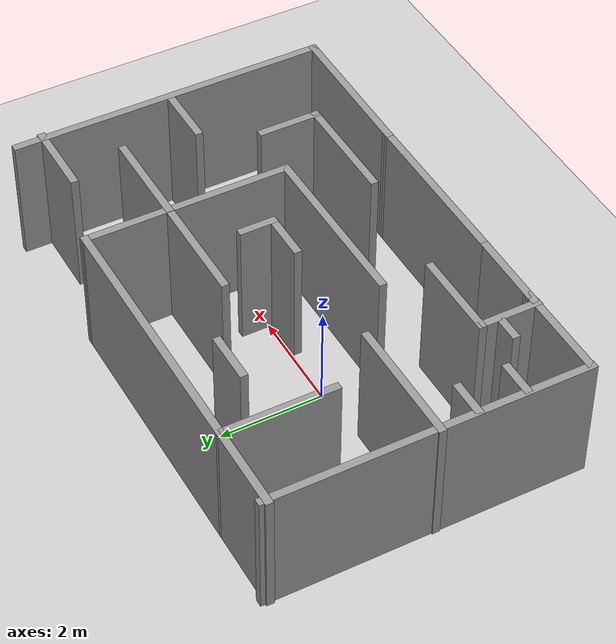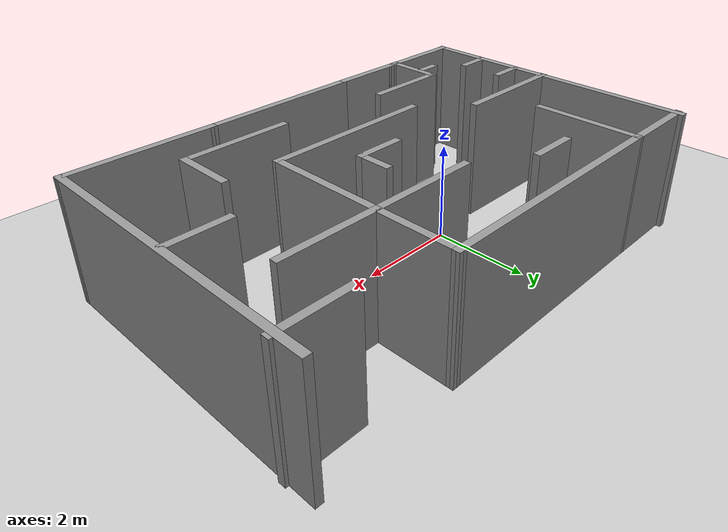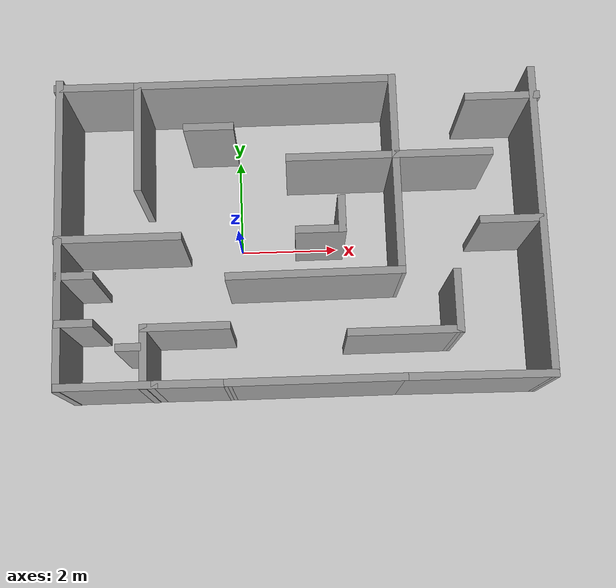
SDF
<?xml version='1.0'?>
<sdf version='1.7'>
 <world name='my_maze_1'>
 <include>
  <uri>model://ground_plane</uri>
</include>
  <model name='my_maze_!'>
    <pose>1.24625 -0.033612 0 0 -0 0</pose>
    <link name='Wall_0'>
      <collision name='Wall_0_Collision'>
        <geometry>
          <box>
            <size>1.75 0.15 2.5</size>
          </box>
        </geometry>
        <pose>0 0 1.25 0 -0 0</pose>
      </collision>
      <visual name='Wall_0_Visual'>
        <pose>0 0 1.25 0 -0 0</pose>
        <geometry>
          <box>
            <size>1.75 0.15 2.5</size>
          </box>
        </geometry>
        <material>
          <script>
            <uri>file://media/materials/scripts/gazebo.material</uri>
            <name>Gazebo/Grey</name>
          </script>
          <ambient>1 1 1 1</ambient>
        </material>
        <meta>
          <layer>0</layer>
        </meta>
      </visual>
      <pose>-2.29625 -1.92639 0 0 -0 3.14159</pose>
    </link>
    <link name='Wall_10'>
      <collision name='Wall_10_Collision'>
        <geometry>
          <box>
            <size>5.24139 0.15 2.5</size>
          </box>
        </geometry>
        <pose>0 0 1.25 0 -0 0</pose>
      </collision>
      <visual name='Wall_10_Visual'>
        <pose>0 0 1.25 0 -0 0</pose>
        <geometry>
          <box>
            <size>5.24139 0.15 2.5</size>
          </box>
        </geometry>
        <material>
          <script>
            <uri>file://media/materials/scripts/gazebo.material</uri>
            <name>Gazebo/Grey</name>
          </script>
          <ambient>1 1 1 1</ambient>
        </material>
        <meta>
          <layer>0</layer>
        </meta>
      </visual>
      <pose>-0.63194 2.96931 0 0 -0 -3.1399</pose>
    </link>
    <link name='Wall_11'>
      <collision name='Wall_11_Collision'>
        <geometry>
          <box>
            <size>2.2414 0.15 2.5</size>
          </box>
        </geometry>
        <pose>0 0 1.25 0 -0 0</pose>
      </collision>
      <visual name='Wall_11_Visual'>
        <pose>0 0 1.25 0 -0 0</pose>
        <geometry>
          <box>
            <size>2.2414 0.15 2.5</size>
          </box>
        </geometry>
        <material>
          <script>
            <uri>file://media/materials/scripts/gazebo.material</uri>
            <name>Gazebo/Grey</name>
          </script>
          <ambient>1 1 1 1</ambient>
        </material>
        <meta>
          <layer>0</layer>
        </meta>
      </visual>
      <pose>-3.18194 1.91931 0 0 -0 -1.57492</pose>
    </link>
    <link name='Wall_13'>
      <collision name='Wall_13_Collision'>
        <geometry>
          <box>
            <size>1 0.15 2.5</size>
          </box>
        </geometry>
        <pose>0 0 1.25 0 -0 0</pose>
      </collision>
      <visual name='Wall_13_Visual'>
        <pose>0 0 1.25 0 -0 0</pose>
        <geometry>
          <box>
            <size>1 0.15 2.5</size>
          </box>
        </geometry>
        <material>
          <script>
            <uri>file://media/materials/scripts/gazebo.material</uri>
            <name>Gazebo/Grey</name>
          </script>
          <ambient>1 1 1 1</ambient>
        </material>
        <meta>
          <layer>0</layer>
        </meta>
      </visual>
      <pose>-1.77822 2.06742 0 0 -0 0</pose>
    </link>
    <link name='Wall_18'>
      <collision name='Wall_18_Collision'>
        <geometry>
          <box>
            <size>6.23139 0.15 2.5</size>
          </box>
        </geometry>
        <pose>0 0 1.25 0 -0 0</pose>
      </collision>
      <visual name='Wall_18_Visual'>
        <pose>0 0 1.25 0 -0 0</pose>
        <geometry>
          <box>
            <size>6.23139 0.15 2.5</size>
          </box>
        </geometry>
        <material>
          <script>
            <uri>file://media/materials/scripts/gazebo.material</uri>
            <name>Gazebo/Grey</name>
          </script>
          <ambient>1 1 1 1</ambient>
        </material>
        <meta>
          <layer>0</layer>
        </meta>
      </visual>
      <pose>-4.74194 0.014305 0 0 -0 -1.57221</pose>
    </link>
    <link name='Wall_2'>
      <collision name='Wall_2_Collision'>
        <geometry>
          <box>
            <size>1.53004 0.15 2.5</size>
          </box>
        </geometry>
        <pose>0 0 1.25 0 -0 0</pose>
      </collision>
      <visual name='Wall_2_Visual'>
        <pose>0 0 1.25 0 -0 0</pose>
        <geometry>
          <box>
            <size>1.53004 0.15 2.5</size>
          </box>
        </geometry>
        <material>
          <script>
            <uri>file://media/materials/scripts/gazebo.material</uri>
            <name>Gazebo/Grey</name>
          </script>
          <ambient>1 1 1 1</ambient>
        </material>
        <meta>
          <layer>0</layer>
        </meta>
      </visual>
      <pose>-2.18625 -3.02139 0 0 -0 -0.007246</pose>
    </link>
    <link name='Wall_20'>
      <collision name='Wall_20_Collision'>
        <geometry>
          <box>
            <size>2 0.15 2.5</size>
          </box>
        </geometry>
        <pose>0 0 1.25 0 -0 0</pose>
      </collision>
      <visual name='Wall_20_Visual'>
        <pose>0 0 1.25 0 -0 0</pose>
        <geometry>
          <box>
            <size>2 0.15 2.5</size>
          </box>
        </geometry>
        <material>
          <script>
            <uri>file://media/materials/scripts/gazebo.material</uri>
            <name>Gazebo/Grey</name>
          </script>
          <ambient>1 1 1 1</ambient>
        </material>
        <meta>
          <layer>0</layer>
        </meta>
      </visual>
      <pose>-3.81125 -3.01639 0 0 -0 3.14159</pose>
    </link>
    <link name='Wall_22'>
      <collision name='Wall_22_Collision'>
        <geometry>
          <box>
            <size>1.25 0.15 2.5</size>
          </box>
        </geometry>
        <pose>0 0 1.25 0 -0 0</pose>
      </collision>
      <visual name='Wall_22_Visual'>
        <pose>0 0 1.25 0 -0 0</pose>
        <geometry>
          <box>
            <size>1.25 0.15 2.5</size>
          </box>
        </geometry>
        <material>
          <script>
            <uri>file://media/materials/scripts/gazebo.material</uri>
            <name>Gazebo/Grey</name>
          </script>
          <ambient>1 1 1 1</ambient>
        </material>
        <meta>
          <layer>0</layer>
        </meta>
      </visual>
      <pose>-3.09625 -2.47639 0 0 -0 -1.5708</pose>
    </link>
    <link name='Wall_24'>
      <collision name='Wall_24_Collision'>
        <geometry>
          <box>
            <size>0.75 0.15 2.5</size>
          </box>
        </geometry>
        <pose>0 0 1.25 0 -0 0</pose>
      </collision>
      <visual name='Wall_24_Visual'>
        <pose>0 0 1.25 0 -0 0</pose>
        <geometry>
          <box>
            <size>0.75 0.15 2.5</size>
          </box>
        </geometry>
        <material>
          <script>
            <uri>file://media/materials/scripts/gazebo.material</uri>
            <name>Gazebo/Grey</name>
          </script>
          <ambient>1 1 1 1</ambient>
        </material>
        <meta>
          <layer>0</layer>
        </meta>
      </visual>
      <pose>0.802177 0.204395 0 0 -0 -1.5708</pose>
    </link>
    <link name='Wall_25'>
      <collision name='Wall_25_Collision'>
        <geometry>
          <box>
            <size>1 0.15 2.5</size>
          </box>
        </geometry>
        <pose>0 0 1.25 0 -0 0</pose>
      </collision>
      <visual name='Wall_25_Visual'>
        <pose>0 0 1.25 0 -0 0</pose>
        <geometry>
          <box>
            <size>1 0.15 2.5</size>
          </box>
        </geometry>
        <material>
          <script>
            <uri>file://media/materials/scripts/gazebo.material</uri>
            <name>Gazebo/Grey</name>
          </script>
          <ambient>1 1 1 1</ambient>
        </material>
        <meta>
          <layer>0</layer>
        </meta>
      </visual>
      <pose>0.377177 -0.095605 0 0 -0 3.14159</pose>
    </link>
    <link name='Wall_27'>
      <collision name='Wall_27_Collision'>
        <geometry>
          <box>
            <size>3.5 0.15 2.5</size>
          </box>
        </geometry>
        <pose>0 0 1.25 0 -0 0</pose>
      </collision>
      <visual name='Wall_27_Visual'>
        <pose>0 0 1.25 0 -0 0</pose>
        <geometry>
          <box>
            <size>3.5 0.15 2.5</size>
          </box>
        </geometry>
        <material>
          <script>
            <uri>file://media/materials/scripts/gazebo.material</uri>
            <name>Gazebo/Grey</name>
          </script>
          <ambient>1 1 1 1</ambient>
        </material>
        <meta>
          <layer>0</layer>
        </meta>
      </visual>
      <pose>0.178753 -3.02639 0 0 -0 0</pose>
    </link>
    <link name='Wall_31'>
      <collision name='Wall_31_Collision'>
        <geometry>
          <box>
            <size>2.5 0.15 2.5</size>
          </box>
        </geometry>
        <pose>0 0 1.25 0 -0 0</pose>
      </collision>
      <visual name='Wall_31_Visual'>
        <pose>0 0 1.25 0 -0 0</pose>
        <geometry>
          <box>
            <size>2.5 0.15 2.5</size>
          </box>
        </geometry>
        <material>
          <script>
            <uri>file://media/materials/scripts/gazebo.material</uri>
            <name>Gazebo/Grey</name>
          </script>
          <ambient>1 1 1 1</ambient>
        </material>
        <meta>
          <layer>0</layer>
        </meta>
      </visual>
      <pose>-3.58742 -0.14596 0 0 -0 0</pose>
    </link>
    <link name='Wall_33'>
      <collision name='Wall_33_Collision'>
        <geometry>
          <box>
            <size>1.75 0.15 2.5</size>
          </box>
        </geometry>
        <pose>0 0 1.25 0 -0 0</pose>
      </collision>
      <visual name='Wall_33_Visual'>
        <pose>0 0 1.25 0 -0 0</pose>
        <geometry>
          <box>
            <size>1.75 0.15 2.5</size>
          </box>
        </geometry>
        <material>
          <script>
            <uri>file://media/materials/scripts/gazebo.material</uri>
            <name>Gazebo/Grey</name>
          </script>
          <ambient>1 1 1 1</ambient>
        </material>
        <meta>
          <layer>0</layer>
        </meta>
      </visual>
      <pose>-3.97763 2.965 0 0 -0 3.14159</pose>
    </link>
    <link name='Wall_35'>
      <collision name='Wall_35_Collision'>
        <geometry>
          <box>
            <size>6.25 0.15 2.5</size>
          </box>
        </geometry>
        <pose>0 0 1.25 0 -0 0</pose>
      </collision>
      <visual name='Wall_35_Visual'>
        <pose>0 0 1.25 0 -0 0</pose>
        <geometry>
          <box>
            <size>6.25 0.15 2.5</size>
          </box>
        </geometry>
        <material>
          <script>
            <uri>file://media/materials/scripts/gazebo.material</uri>
            <name>Gazebo/Grey</name>
          </script>
          <ambient>1 1 1 1</ambient>
        </material>
        <meta>
          <layer>0</layer>
        </meta>
      </visual>
      <pose>4.71729 -0.004375 0 0 -0 -1.5708</pose>
    </link>
    <link name='Wall_36'>
      <collision name='Wall_36_Collision'>
        <geometry>
          <box>
            <size>3.01368 0.15 2.5</size>
          </box>
        </geometry>
        <pose>0 0 1.25 0 -0 0</pose>
      </collision>
      <visual name='Wall_36_Visual'>
        <pose>0 0 1.25 0 -0 0</pose>
        <geometry>
          <box>
            <size>3.01368 0.15 2.5</size>
          </box>
        </geometry>
        <material>
          <script>
            <uri>file://media/materials/scripts/gazebo.material</uri>
            <name>Gazebo/Grey</name>
          </script>
          <ambient>1 1 1 1</ambient>
        </material>
        <meta>
          <layer>0</layer>
        </meta>
      </visual>
      <pose>3.28552 -3.04038 0 0 -0 3.13182</pose>
    </link>
    <link name='Wall_38'>
      <collision name='Wall_38_Collision'>
        <geometry>
          <box>
            <size>2.25 0.15 2.5</size>
          </box>
        </geometry>
        <pose>0 0 1.25 0 -0 0</pose>
      </collision>
      <visual name='Wall_38_Visual'>
        <pose>0 0 1.25 0 -0 0</pose>
        <geometry>
          <box>
            <size>2.25 0.15 2.5</size>
          </box>
        </geometry>
        <material>
          <script>
            <uri>file://media/materials/scripts/gazebo.material</uri>
            <name>Gazebo/Grey</name>
          </script>
          <ambient>1 1 1 1</ambient>
        </material>
        <meta>
          <layer>0</layer>
        </meta>
      </visual>
      <pose>1.9256 -2.14368 0 0 -0 0</pose>
    </link>
    <link name='Wall_39'>
      <collision name='Wall_39_Collision'>
        <geometry>
          <box>
            <size>1.25 0.15 2.5</size>
          </box>
        </geometry>
        <pose>0 0 1.25 0 -0 0</pose>
      </collision>
      <visual name='Wall_39_Visual'>
        <pose>0 0 1.25 0 -0 0</pose>
        <geometry>
          <box>
            <size>1.25 0.15 2.5</size>
          </box>
        </geometry>
        <material>
          <script>
            <uri>file://media/materials/scripts/gazebo.material</uri>
            <name>Gazebo/Grey</name>
          </script>
          <ambient>1 1 1 1</ambient>
        </material>
        <meta>
          <layer>0</layer>
        </meta>
      </visual>
      <pose>2.9756 -1.59368 0 0 -0 1.5708</pose>
    </link>
    <link name='Wall_4'>
      <collision name='Wall_4_Collision'>
        <geometry>
          <box>
            <size>3.50005 0.15 2.5</size>
          </box>
        </geometry>
        <pose>0 0 1.25 0 -0 0</pose>
      </collision>
      <visual name='Wall_4_Visual'>
        <pose>0 0 1.25 0 -0 0</pose>
        <geometry>
          <box>
            <size>3.50005 0.15 2.5</size>
          </box>
        </geometry>
        <material>
          <script>
            <uri>file://media/materials/scripts/gazebo.material</uri>
            <name>Gazebo/Grey</name>
          </script>
          <ambient>1 1 1 1</ambient>
        </material>
        <meta>
          <layer>0</layer>
        </meta>
      </visual>
      <pose>0.238753 -0.967692 0 0 -0 0.005191</pose>
    </link>
    <link name='Wall_42'>
      <collision name='Wall_42_Collision'>
        <geometry>
          <box>
            <size>1.25 0.15 2.5</size>
          </box>
        </geometry>
        <pose>0 0 1.25 0 -0 0</pose>
      </collision>
      <visual name='Wall_42_Visual'>
        <pose>0 0 1.25 0 -0 0</pose>
        <geometry>
          <box>
            <size>1.25 0.15 2.5</size>
          </box>
        </geometry>
        <material>
          <script>
            <uri>file://media/materials/scripts/gazebo.material</uri>
            <name>Gazebo/Grey</name>
          </script>
          <ambient>1 1 1 1</ambient>
        </material>
        <meta>
          <layer>0</layer>
        </meta>
      </visual>
      <pose>4.10695 -0.011638 0 0 -0 3.14159</pose>
    </link>
    <link name='Wall_44'>
      <collision name='Wall_44_Collision'>
        <geometry>
          <box>
            <size>2 0.15 2.5</size>
          </box>
        </geometry>
        <pose>0 0 1.25 0 -0 0</pose>
      </collision>
      <visual name='Wall_44_Visual'>
        <pose>0 0 1.25 0 -0 0</pose>
        <geometry>
          <box>
            <size>2 0.15 2.5</size>
          </box>
        </geometry>
        <material>
          <script>
            <uri>file://media/materials/scripts/gazebo.material</uri>
            <name>Gazebo/Grey</name>
          </script>
          <ambient>1 1 1 1</ambient>
        </material>
        <meta>
          <layer>0</layer>
        </meta>
      </visual>
      <pose>2.83875 1.37361 0 0 -0 0</pose>
    </link>
    <link name='Wall_46'>
      <collision name='Wall_46_Collision'>
        <geometry>
          <box>
            <size>1.5 0.15 2.5</size>
          </box>
        </geometry>
        <pose>0 0 1.25 0 -0 0</pose>
      </collision>
      <visual name='Wall_46_Visual'>
        <pose>0 0 1.25 0 -0 0</pose>
        <geometry>
          <box>
            <size>1.5 0.15 2.5</size>
          </box>
        </geometry>
        <material>
          <script>
            <uri>file://media/materials/scripts/gazebo.material</uri>
            <name>Gazebo/Grey</name>
          </script>
          <ambient>1 1 1 1</ambient>
        </material>
        <meta>
          <layer>0</layer>
        </meta>
      </visual>
      <pose>4.10263 2.52267 0 0 -0 3.14159</pose>
    </link>
    <link name='Wall_48'>
      <collision name='Wall_48_Collision'>
        <geometry>
          <box>
            <size>0.75 0.15 2.5</size>
          </box>
        </geometry>
        <pose>0 0 1.25 0 -0 0</pose>
      </collision>
      <visual name='Wall_48_Visual'>
        <pose>0 0 1.25 0 -0 0</pose>
        <geometry>
          <box>
            <size>0.75 0.15 2.5</size>
          </box>
        </geometry>
        <material>
          <script>
            <uri>file://media/materials/scripts/gazebo.material</uri>
            <name>Gazebo/Grey</name>
          </script>
          <ambient>1 1 1 1</ambient>
        </material>
        <meta>
          <layer>0</layer>
        </meta>
      </visual>
      <pose>-4.42685 -0.86849 0 0 -0 0</pose>
    </link>
    <link name='Wall_50'>
      <collision name='Wall_50_Collision'>
        <geometry>
          <box>
            <size>0.5 0.15 2.5</size>
          </box>
        </geometry>
        <pose>0 0 1.25 0 -0 0</pose>
      </collision>
      <visual name='Wall_50_Visual'>
        <pose>0 0 1.25 0 -0 0</pose>
        <geometry>
          <box>
            <size>0.5 0.15 2.5</size>
          </box>
        </geometry>
        <material>
          <script>
            <uri>file://media/materials/scripts/gazebo.material</uri>
            <name>Gazebo/Grey</name>
          </script>
          <ambient>1 1 1 1</ambient>
        </material>
        <meta>
          <layer>0</layer>
        </meta>
      </visual>
      <pose>-3.38185 -2.28849 0 0 -0 3.14159</pose>
    </link>
    <link name='Wall_52'>
      <collision name='Wall_52_Collision'>
        <geometry>
          <box>
            <size>0.75 0.15 2.5</size>
          </box>
        </geometry>
        <pose>0 0 1.25 0 -0 0</pose>
      </collision>
      <visual name='Wall_52_Visual'>
        <pose>0 0 1.25 0 -0 0</pose>
        <geometry>
          <box>
            <size>0.75 0.15 2.5</size>
          </box>
        </geometry>
        <material>
          <script>
            <uri>file://media/materials/scripts/gazebo.material</uri>
            <name>Gazebo/Grey</name>
          </script>
          <ambient>1 1 1 1</ambient>
        </material>
        <meta>
          <layer>0</layer>
        </meta>
      </visual>
      <pose>-4.42685 -1.79849 0 0 -0 0</pose>
    </link>
    <link name='Wall_6'>
      <collision name='Wall_6_Collision'>
        <geometry>
          <box>
            <size>2.48261 0.15 2.5</size>
          </box>
        </geometry>
        <pose>0 0 1.25 0 -0 0</pose>
      </collision>
      <visual name='Wall_6_Visual'>
        <pose>0 0 1.25 0 -0 0</pose>
        <geometry>
          <box>
            <size>2.48261 0.15 2.5</size>
          </box>
        </geometry>
        <material>
          <script>
            <uri>file://media/materials/scripts/gazebo.material</uri>
            <name>Gazebo/Grey</name>
          </script>
          <ambient>1 1 1 1</ambient>
        </material>
        <meta>
          <layer>0</layer>
        </meta>
      </visual>
      <pose>1.91375 0.207308 0 0 -0 1.5708</pose>
    </link>
    <link name='Wall_7'>
      <collision name='Wall_7_Collision'>
        <geometry>
          <box>
            <size>2.25 0.15 2.5</size>
          </box>
        </geometry>
        <pose>0 0 1.25 0 -0 0</pose>
      </collision>
      <visual name='Wall_7_Visual'>
        <pose>0 0 1.25 0 -0 0</pose>
        <geometry>
          <box>
            <size>2.25 0.15 2.5</size>
          </box>
        </geometry>
        <material>
          <script>
            <uri>file://media/materials/scripts/gazebo.material</uri>
            <name>Gazebo/Grey</name>
          </script>
          <ambient>1 1 1 1</ambient>
        </material>
        <meta>
          <layer>0</layer>
        </meta>
      </visual>
      <pose>0.863753 1.37361 0 0 -0 3.14159</pose>
    </link>
    <link name='Wall_9'>
      <collision name='Wall_9_Collision'>
        <geometry>
          <box>
            <size>1.75 0.15 2.5</size>
          </box>
        </geometry>
        <pose>0 0 1.25 0 -0 0</pose>
      </collision>
      <visual name='Wall_9_Visual'>
        <pose>0 0 1.25 0 -0 0</pose>
        <geometry>
          <box>
            <size>1.75 0.15 2.5</size>
          </box>
        </geometry>
        <material>
          <script>
            <uri>file://media/materials/scripts/gazebo.material</uri>
            <name>Gazebo/Grey</name>
          </script>
          <ambient>1 1 1 1</ambient>
        </material>
        <meta>
          <layer>0</layer>
        </meta>
      </visual>
      <pose>1.91375 2.17361 0 0 -0 1.5708</pose>
    </link>
    <static>1</static>
  </model>
  </world>
</sdf>
